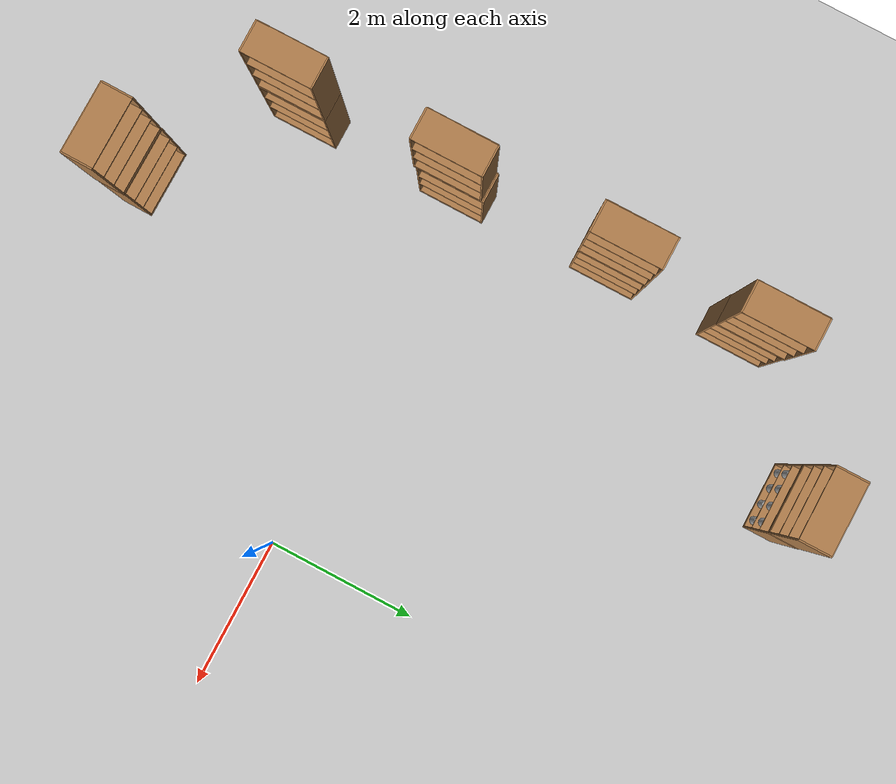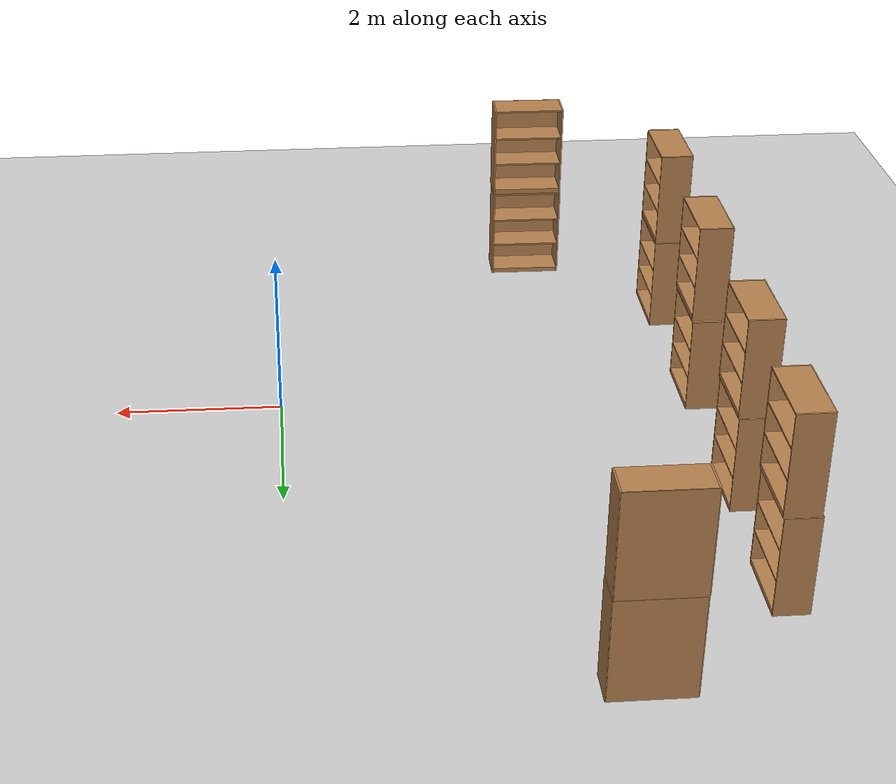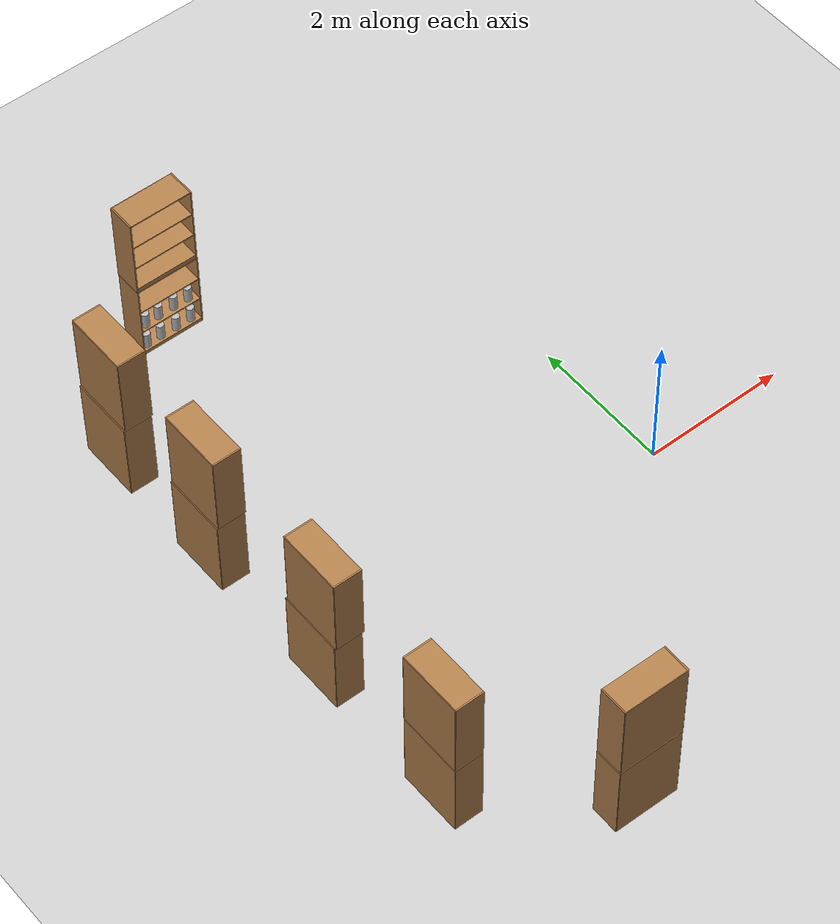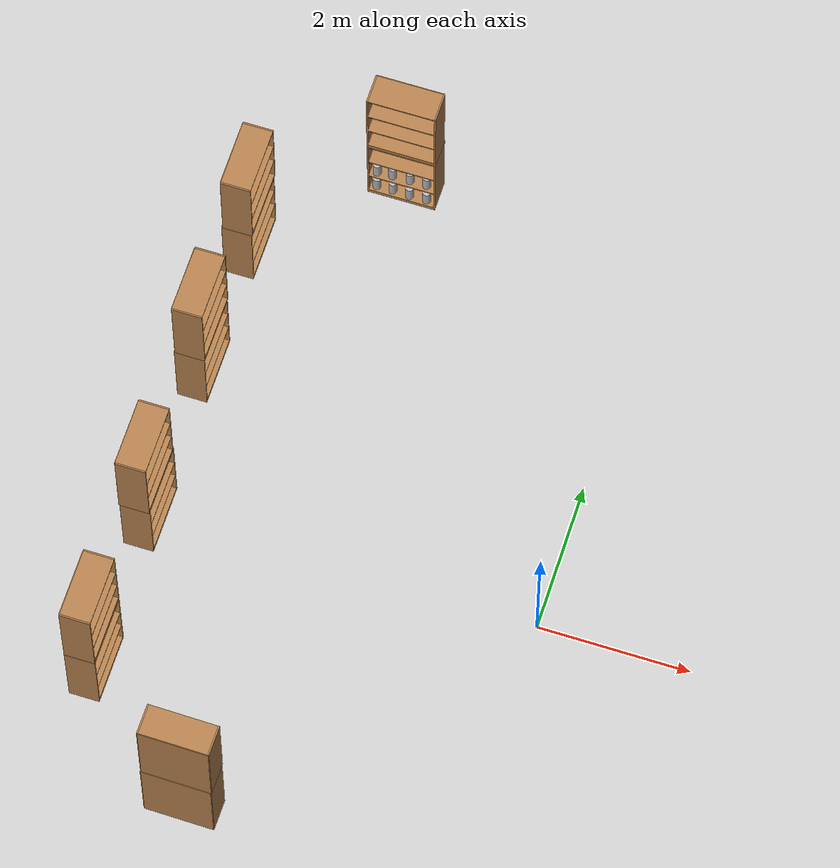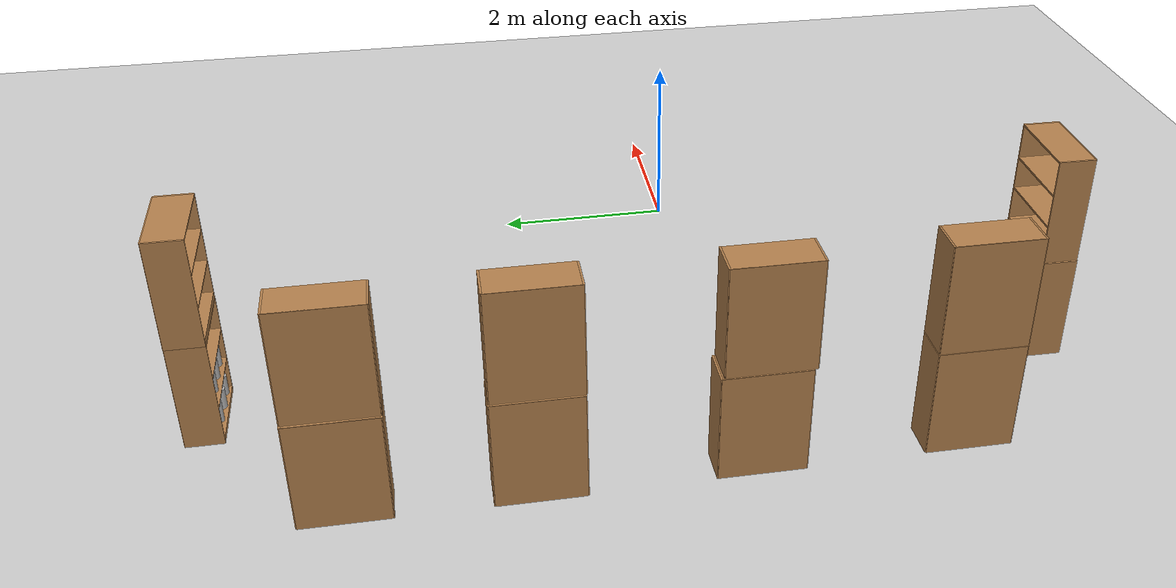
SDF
<sdf version="1.7">
 <world name="default">
  <model name="ground_plane">
   <static>1</static>
   <link name="link">
    <collision name="collision">
     <geometry><plane><normal>0 0 1</normal><size>100 100</size></plane></geometry>
     <surface><friction><ode><mu>100</mu><mu2>50</mu2></ode></friction></surface>
    </collision>
    <visual name="visual">
     <cast_shadows>0</cast_shadows>
     <geometry><plane><normal>0 0 1</normal><size>100 100</size></plane></geometry>
     <material>
      <script><uri>file://media/materials/scripts/gazebo.material</uri><name>Gazebo/Grey</name></script>
     </material>
    </visual>
   </link>
  </model>
  <model name="bookshelf_2_clone_clone">
   <static>1</static>
   <link name="link">
    <inertial><mass>1</mass></inertial>
    <collision name="back">
     <pose>0 0.005 0.6 0 -0 0</pose>
     <geometry><box><size>0.9 0.01 1.2</size></box></geometry>
    </collision>
    <visual name="visual1">
     <pose>0 0.005 0.6 0 -0 0</pose>
     <geometry><box><size>0.9 0.01 1.2</size></box></geometry>
     <material>
      <script><uri>file://media/materials/scripts/gazebo.material</uri><name>Gazebo/Wood</name></script>
     </material>
    </visual>
    <collision name="left_side">
     <pose>0.45 -0.195 0.6 0 -0 0</pose>
     <geometry><box><size>0.02 0.4 1.2</size></box></geometry>
    </collision>
    <visual name="visual2">
     <pose>0.45 -0.195 0.6 0 -0 0</pose>
     <geometry><box><size>0.02 0.4 1.2</size></box></geometry>
     <material>
      <script><uri>file://media/materials/scripts/gazebo.material</uri><name>Gazebo/Wood</name></script>
     </material>
    </visual>
    <collision name="right_side">
     <pose>-0.45 -0.195 0.6 0 -0 0</pose>
     <geometry><box><size>0.02 0.4 1.2</size></box></geometry>
    </collision>
    <visual name="visual3">
     <pose>-0.45 -0.195 0.6 0 -0 0</pose>
     <geometry><box><size>0.02 0.4 1.2</size></box></geometry>
     <material>
      <script><uri>file://media/materials/scripts/gazebo.material</uri><name>Gazebo/Wood</name></script>
     </material>
    </visual>
    <collision name="bottom">
     <pose>0 -0.195 0.03 0 -0 0</pose>
     <geometry><box><size>0.88 0.4 0.06</size></box></geometry>
    </collision>
    <visual name="visual4">
     <pose>0 -0.195 0.03 0 -0 0</pose>
     <geometry><box><size>0.88 0.4 0.06</size></box></geometry>
     <material>
      <script><uri>file://media/materials/scripts/gazebo.material</uri><name>Gazebo/Wood</name></script>
     </material>
    </visual>
    <collision name="top">
     <pose>0 -0.195 1.19 0 -0 0</pose>
     <geometry><box><size>0.88 0.4 0.02</size></box></geometry>
    </collision>
    <visual name="visual5">
     <pose>0 -0.195 1.19 0 -0 0</pose>
     <geometry><box><size>0.88 0.4 0.02</size></box></geometry>
     <material>
      <script><uri>file://media/materials/scripts/gazebo.material</uri><name>Gazebo/Wood</name></script>
     </material>
    </visual>
    <collision name="low_shelf">
     <pose>0 -0.195 0.43 0 -0 0</pose>
     <geometry><box><size>0.88 0.4 0.02</size></box></geometry>
    </collision>
    <visual name="visual6">
     <pose>0 -0.195 0.43 0 -0 0</pose>
     <geometry><box><size>0.88 0.4 0.02</size></box></geometry>
     <material>
      <script><uri>file://media/materials/scripts/gazebo.material</uri><name>Gazebo/Wood</name></script>
     </material>
    </visual>
    <collision name="high_shelf">
     <pose>0 -0.195 0.8 0 -0 0</pose>
     <geometry><box><size>0.88 0.4 0.02</size></box></geometry>
    </collision>
    <visual name="visual7">
     <pose>0 -0.195 0.8 0 -0 0</pose>
     <geometry><box><size>0.88 0.4 0.02</size></box></geometry>
     <material>
      <script><uri>file://media/materials/scripts/gazebo.material</uri><name>Gazebo/Wood</name></script>
     </material>
    </visual>
   </link>
   <pose>-3.46853 5.62428 0 0 -0 0</pose>
  </model>
  <model name="bookshelf_3_clone_clone">
   <static>1</static>
   <link name="link">
    <inertial><mass>1</mass></inertial>
    <collision name="back">
     <pose>0 0.005 0.6 0 -0 0</pose>
     <geometry><box><size>0.9 0.01 1.2</size></box></geometry>
    </collision>
    <visual name="visual1">
     <pose>0 0.005 0.6 0 -0 0</pose>
     <geometry><box><size>0.9 0.01 1.2</size></box></geometry>
     <material>
      <script><uri>file://media/materials/scripts/gazebo.material</uri><name>Gazebo/Wood</name></script>
     </material>
    </visual>
    <collision name="left_side">
     <pose>0.45 -0.195 0.6 0 -0 0</pose>
     <geometry><box><size>0.02 0.4 1.2</size></box></geometry>
    </collision>
    <visual name="visual2">
     <pose>0.45 -0.195 0.6 0 -0 0</pose>
     <geometry><box><size>0.02 0.4 1.2</size></box></geometry>
     <material>
      <script><uri>file://media/materials/scripts/gazebo.material</uri><name>Gazebo/Wood</name></script>
     </material>
    </visual>
    <collision name="right_side">
     <pose>-0.45 -0.195 0.6 0 -0 0</pose>
     <geometry><box><size>0.02 0.4 1.2</size></box></geometry>
    </collision>
    <visual name="visual3">
     <pose>-0.45 -0.195 0.6 0 -0 0</pose>
     <geometry><box><size>0.02 0.4 1.2</size></box></geometry>
     <material>
      <script><uri>file://media/materials/scripts/gazebo.material</uri><name>Gazebo/Wood</name></script>
     </material>
    </visual>
    <collision name="bottom">
     <pose>0 -0.195 0.03 0 -0 0</pose>
     <geometry><box><size>0.88 0.4 0.06</size></box></geometry>
    </collision>
    <visual name="visual4">
     <pose>0 -0.195 0.03 0 -0 0</pose>
     <geometry><box><size>0.88 0.4 0.06</size></box></geometry>
     <material>
      <script><uri>file://media/materials/scripts/gazebo.material</uri><name>Gazebo/Wood</name></script>
     </material>
    </visual>
    <collision name="top">
     <pose>0 -0.195 1.19 0 -0 0</pose>
     <geometry><box><size>0.88 0.4 0.02</size></box></geometry>
    </collision>
    <visual name="visual5">
     <pose>0 -0.195 1.19 0 -0 0</pose>
     <geometry><box><size>0.88 0.4 0.02</size></box></geometry>
     <material>
      <script><uri>file://media/materials/scripts/gazebo.material</uri><name>Gazebo/Wood</name></script>
     </material>
    </visual>
    <collision name="low_shelf">
     <pose>0 -0.195 0.43 0 -0 0</pose>
     <geometry><box><size>0.88 0.4 0.02</size></box></geometry>
    </collision>
    <visual name="visual6">
     <pose>0 -0.195 0.43 0 -0 0</pose>
     <geometry><box><size>0.88 0.4 0.02</size></box></geometry>
     <material>
      <script><uri>file://media/materials/scripts/gazebo.material</uri><name>Gazebo/Wood</name></script>
     </material>
    </visual>
    <collision name="high_shelf">
     <pose>0 -0.195 0.8 0 -0 0</pose>
     <geometry><box><size>0.88 0.4 0.02</size></box></geometry>
    </collision>
    <visual name="visual7">
     <pose>0 -0.195 0.8 0 -0 0</pose>
     <geometry><box><size>0.88 0.4 0.02</size></box></geometry>
     <material>
      <script><uri>file://media/materials/scripts/gazebo.material</uri><name>Gazebo/Wood</name></script>
     </material>
    </visual>
   </link>
   <pose>-3.47373 5.62521 1.20481 0 -0 0</pose>
  </model>
  <model name="bookshelf_5_clone_5">
   <static>1</static>
   <link name="link">
    <inertial><mass>1</mass></inertial>
    <collision name="back">
     <pose>0 0.005 0.6 0 -0 0</pose>
     <geometry><box><size>0.9 0.01 1.2</size></box></geometry>
    </collision>
    <visual name="visual1">
     <pose>0 0.005 0.6 0 -0 0</pose>
     <geometry><box><size>0.9 0.01 1.2</size></box></geometry>
     <material>
      <script><uri>file://media/materials/scripts/gazebo.material</uri><name>Gazebo/Wood</name></script>
     </material>
    </visual>
    <collision name="left_side">
     <pose>0.45 -0.195 0.6 0 -0 0</pose>
     <geometry><box><size>0.02 0.4 1.2</size></box></geometry>
    </collision>
    <visual name="visual2">
     <pose>0.45 -0.195 0.6 0 -0 0</pose>
     <geometry><box><size>0.02 0.4 1.2</size></box></geometry>
     <material>
      <script><uri>file://media/materials/scripts/gazebo.material</uri><name>Gazebo/Wood</name></script>
     </material>
    </visual>
    <collision name="right_side">
     <pose>-0.45 -0.195 0.6 0 -0 0</pose>
     <geometry><box><size>0.02 0.4 1.2</size></box></geometry>
    </collision>
    <visual name="visual3">
     <pose>-0.45 -0.195 0.6 0 -0 0</pose>
     <geometry><box><size>0.02 0.4 1.2</size></box></geometry>
     <material>
      <script><uri>file://media/materials/scripts/gazebo.material</uri><name>Gazebo/Wood</name></script>
     </material>
    </visual>
    <collision name="bottom">
     <pose>0 -0.195 0.03 0 -0 0</pose>
     <geometry><box><size>0.88 0.4 0.06</size></box></geometry>
    </collision>
    <visual name="visual4">
     <pose>0 -0.195 0.03 0 -0 0</pose>
     <geometry><box><size>0.88 0.4 0.06</size></box></geometry>
     <material>
      <script><uri>file://media/materials/scripts/gazebo.material</uri><name>Gazebo/Wood</name></script>
     </material>
    </visual>
    <collision name="top">
     <pose>0 -0.195 1.19 0 -0 0</pose>
     <geometry><box><size>0.88 0.4 0.02</size></box></geometry>
    </collision>
    <visual name="visual5">
     <pose>0 -0.195 1.19 0 -0 0</pose>
     <geometry><box><size>0.88 0.4 0.02</size></box></geometry>
     <material>
      <script><uri>file://media/materials/scripts/gazebo.material</uri><name>Gazebo/Wood</name></script>
     </material>
    </visual>
    <collision name="low_shelf">
     <pose>0 -0.195 0.43 0 -0 0</pose>
     <geometry><box><size>0.88 0.4 0.02</size></box></geometry>
    </collision>
    <visual name="visual6">
     <pose>0 -0.195 0.43 0 -0 0</pose>
     <geometry><box><size>0.88 0.4 0.02</size></box></geometry>
     <material>
      <script><uri>file://media/materials/scripts/gazebo.material</uri><name>Gazebo/Wood</name></script>
     </material>
    </visual>
    <collision name="high_shelf">
     <pose>0 -0.195 0.8 0 -0 0</pose>
     <geometry><box><size>0.88 0.4 0.02</size></box></geometry>
    </collision>
    <visual name="visual7">
     <pose>0 -0.195 0.8 0 -0 0</pose>
     <geometry><box><size>0.88 0.4 0.02</size></box></geometry>
     <material>
      <script><uri>file://media/materials/scripts/gazebo.material</uri><name>Gazebo/Wood</name></script>
     </material>
    </visual>
   </link>
   <pose>-3.44979 -3.80253 0 0 -0 3.12955</pose>
  </model>
  <model name="bookshelf_5_clone_clone_1">
   <static>1</static>
   <link name="link">
    <inertial><mass>1</mass></inertial>
    <collision name="back">
     <pose>0 0.005 0.6 0 -0 0</pose>
     <geometry><box><size>0.9 0.01 1.2</size></box></geometry>
    </collision>
    <visual name="visual1">
     <pose>0 0.005 0.6 0 -0 0</pose>
     <geometry><box><size>0.9 0.01 1.2</size></box></geometry>
     <material>
      <script><uri>file://media/materials/scripts/gazebo.material</uri><name>Gazebo/Wood</name></script>
     </material>
    </visual>
    <collision name="left_side">
     <pose>0.45 -0.195 0.6 0 -0 0</pose>
     <geometry><box><size>0.02 0.4 1.2</size></box></geometry>
    </collision>
    <visual name="visual2">
     <pose>0.45 -0.195 0.6 0 -0 0</pose>
     <geometry><box><size>0.02 0.4 1.2</size></box></geometry>
     <material>
      <script><uri>file://media/materials/scripts/gazebo.material</uri><name>Gazebo/Wood</name></script>
     </material>
    </visual>
    <collision name="right_side">
     <pose>-0.45 -0.195 0.6 0 -0 0</pose>
     <geometry><box><size>0.02 0.4 1.2</size></box></geometry>
    </collision>
    <visual name="visual3">
     <pose>-0.45 -0.195 0.6 0 -0 0</pose>
     <geometry><box><size>0.02 0.4 1.2</size></box></geometry>
     <material>
      <script><uri>file://media/materials/scripts/gazebo.material</uri><name>Gazebo/Wood</name></script>
     </material>
    </visual>
    <collision name="bottom">
     <pose>0 -0.195 0.03 0 -0 0</pose>
     <geometry><box><size>0.88 0.4 0.06</size></box></geometry>
    </collision>
    <visual name="visual4">
     <pose>0 -0.195 0.03 0 -0 0</pose>
     <geometry><box><size>0.88 0.4 0.06</size></box></geometry>
     <material>
      <script><uri>file://media/materials/scripts/gazebo.material</uri><name>Gazebo/Wood</name></script>
     </material>
    </visual>
    <collision name="top">
     <pose>0 -0.195 1.19 0 -0 0</pose>
     <geometry><box><size>0.88 0.4 0.02</size></box></geometry>
    </collision>
    <visual name="visual5">
     <pose>0 -0.195 1.19 0 -0 0</pose>
     <geometry><box><size>0.88 0.4 0.02</size></box></geometry>
     <material>
      <script><uri>file://media/materials/scripts/gazebo.material</uri><name>Gazebo/Wood</name></script>
     </material>
    </visual>
    <collision name="low_shelf">
     <pose>0 -0.195 0.43 0 -0 0</pose>
     <geometry><box><size>0.88 0.4 0.02</size></box></geometry>
    </collision>
    <visual name="visual6">
     <pose>0 -0.195 0.43 0 -0 0</pose>
     <geometry><box><size>0.88 0.4 0.02</size></box></geometry>
     <material>
      <script><uri>file://media/materials/scripts/gazebo.material</uri><name>Gazebo/Wood</name></script>
     </material>
    </visual>
    <collision name="high_shelf">
     <pose>0 -0.195 0.8 0 -0 0</pose>
     <geometry><box><size>0.88 0.4 0.02</size></box></geometry>
    </collision>
    <visual name="visual7">
     <pose>0 -0.195 0.8 0 -0 0</pose>
     <geometry><box><size>0.88 0.4 0.02</size></box></geometry>
     <material>
      <script><uri>file://media/materials/scripts/gazebo.material</uri><name>Gazebo/Wood</name></script>
     </material>
    </visual>
   </link>
   <pose>-3.44383 -3.79926 1.21139 0 -0 3.12955</pose>
  </model>
  <model name="bookshelf_0_clone_0">
   <static>1</static>
   <link name="link">
    <inertial><mass>1</mass></inertial>
    <collision name="back">
     <pose>0 0.005 0.6 0 -0 0</pose>
     <geometry><box><size>0.9 0.01 1.2</size></box></geometry>
    </collision>
    <visual name="visual1">
     <pose>0 0.005 0.6 0 -0 0</pose>
     <geometry><box><size>0.9 0.01 1.2</size></box></geometry>
     <material>
      <script><uri>file://media/materials/scripts/gazebo.material</uri><name>Gazebo/Wood</name></script>
     </material>
    </visual>
    <collision name="left_side">
     <pose>0.45 -0.195 0.6 0 -0 0</pose>
     <geometry><box><size>0.02 0.4 1.2</size></box></geometry>
    </collision>
    <visual name="visual2">
     <pose>0.45 -0.195 0.6 0 -0 0</pose>
     <geometry><box><size>0.02 0.4 1.2</size></box></geometry>
     <material>
      <script><uri>file://media/materials/scripts/gazebo.material</uri><name>Gazebo/Wood</name></script>
     </material>
    </visual>
    <collision name="right_side">
     <pose>-0.45 -0.195 0.6 0 -0 0</pose>
     <geometry><box><size>0.02 0.4 1.2</size></box></geometry>
    </collision>
    <visual name="visual3">
     <pose>-0.45 -0.195 0.6 0 -0 0</pose>
     <geometry><box><size>0.02 0.4 1.2</size></box></geometry>
     <material>
      <script><uri>file://media/materials/scripts/gazebo.material</uri><name>Gazebo/Wood</name></script>
     </material>
    </visual>
    <collision name="bottom">
     <pose>0 -0.195 0.03 0 -0 0</pose>
     <geometry><box><size>0.88 0.4 0.06</size></box></geometry>
    </collision>
    <visual name="visual4">
     <pose>0 -0.195 0.03 0 -0 0</pose>
     <geometry><box><size>0.88 0.4 0.06</size></box></geometry>
     <material>
      <script><uri>file://media/materials/scripts/gazebo.material</uri><name>Gazebo/Wood</name></script>
     </material>
    </visual>
    <collision name="top">
     <pose>0 -0.195 1.19 0 -0 0</pose>
     <geometry><box><size>0.88 0.4 0.02</size></box></geometry>
    </collision>
    <visual name="visual5">
     <pose>0 -0.195 1.19 0 -0 0</pose>
     <geometry><box><size>0.88 0.4 0.02</size></box></geometry>
     <material>
      <script><uri>file://media/materials/scripts/gazebo.material</uri><name>Gazebo/Wood</name></script>
     </material>
    </visual>
    <collision name="low_shelf">
     <pose>0 -0.195 0.43 0 -0 0</pose>
     <geometry><box><size>0.88 0.4 0.02</size></box></geometry>
    </collision>
    <visual name="visual6">
     <pose>0 -0.195 0.43 0 -0 0</pose>
     <geometry><box><size>0.88 0.4 0.02</size></box></geometry>
     <material>
      <script><uri>file://media/materials/scripts/gazebo.material</uri><name>Gazebo/Wood</name></script>
     </material>
    </visual>
    <collision name="high_shelf">
     <pose>0 -0.195 0.8 0 -0 0</pose>
     <geometry><box><size>0.88 0.4 0.02</size></box></geometry>
    </collision>
    <visual name="visual7">
     <pose>0 -0.195 0.8 0 -0 0</pose>
     <geometry><box><size>0.88 0.4 0.02</size></box></geometry>
     <material>
      <script><uri>file://media/materials/scripts/gazebo.material</uri><name>Gazebo/Wood</name></script>
     </material>
    </visual>
   </link>
   <pose>-5.30935 -0.025093 0 0 -0 1.5697</pose>
  </model>
  <model name="bookshelf_0_clone_0_clone">
   <static>1</static>
   <link name="link">
    <inertial><mass>1</mass></inertial>
    <collision name="back">
     <pose>0 0.005 0.6 0 -0 0</pose>
     <geometry><box><size>0.9 0.01 1.2</size></box></geometry>
    </collision>
    <visual name="visual1">
     <pose>0 0.005 0.6 0 -0 0</pose>
     <geometry><box><size>0.9 0.01 1.2</size></box></geometry>
     <material>
      <script><uri>file://media/materials/scripts/gazebo.material</uri><name>Gazebo/Wood</name></script>
     </material>
    </visual>
    <collision name="left_side">
     <pose>0.45 -0.195 0.6 0 -0 0</pose>
     <geometry><box><size>0.02 0.4 1.2</size></box></geometry>
    </collision>
    <visual name="visual2">
     <pose>0.45 -0.195 0.6 0 -0 0</pose>
     <geometry><box><size>0.02 0.4 1.2</size></box></geometry>
     <material>
      <script><uri>file://media/materials/scripts/gazebo.material</uri><name>Gazebo/Wood</name></script>
     </material>
    </visual>
    <collision name="right_side">
     <pose>-0.45 -0.195 0.6 0 -0 0</pose>
     <geometry><box><size>0.02 0.4 1.2</size></box></geometry>
    </collision>
    <visual name="visual3">
     <pose>-0.45 -0.195 0.6 0 -0 0</pose>
     <geometry><box><size>0.02 0.4 1.2</size></box></geometry>
     <material>
      <script><uri>file://media/materials/scripts/gazebo.material</uri><name>Gazebo/Wood</name></script>
     </material>
    </visual>
    <collision name="bottom">
     <pose>0 -0.195 0.03 0 -0 0</pose>
     <geometry><box><size>0.88 0.4 0.06</size></box></geometry>
    </collision>
    <visual name="visual4">
     <pose>0 -0.195 0.03 0 -0 0</pose>
     <geometry><box><size>0.88 0.4 0.06</size></box></geometry>
     <material>
      <script><uri>file://media/materials/scripts/gazebo.material</uri><name>Gazebo/Wood</name></script>
     </material>
    </visual>
    <collision name="top">
     <pose>0 -0.195 1.19 0 -0 0</pose>
     <geometry><box><size>0.88 0.4 0.02</size></box></geometry>
    </collision>
    <visual name="visual5">
     <pose>0 -0.195 1.19 0 -0 0</pose>
     <geometry><box><size>0.88 0.4 0.02</size></box></geometry>
     <material>
      <script><uri>file://media/materials/scripts/gazebo.material</uri><name>Gazebo/Wood</name></script>
     </material>
    </visual>
    <collision name="low_shelf">
     <pose>0 -0.195 0.43 0 -0 0</pose>
     <geometry><box><size>0.88 0.4 0.02</size></box></geometry>
    </collision>
    <visual name="visual6">
     <pose>0 -0.195 0.43 0 -0 0</pose>
     <geometry><box><size>0.88 0.4 0.02</size></box></geometry>
     <material>
      <script><uri>file://media/materials/scripts/gazebo.material</uri><name>Gazebo/Wood</name></script>
     </material>
    </visual>
    <collision name="high_shelf">
     <pose>0 -0.195 0.8 0 -0 0</pose>
     <geometry><box><size>0.88 0.4 0.02</size></box></geometry>
    </collision>
    <visual name="visual7">
     <pose>0 -0.195 0.8 0 -0 0</pose>
     <geometry><box><size>0.88 0.4 0.02</size></box></geometry>
     <material>
      <script><uri>file://media/materials/scripts/gazebo.material</uri><name>Gazebo/Wood</name></script>
     </material>
    </visual>
   </link>
   <pose>-5.33454 2.15943 0 0 -0 1.5697</pose>
  </model>
  <model name="bookshelf_0_clone_0_clone_0">
   <static>1</static>
   <link name="link">
    <inertial><mass>1</mass></inertial>
    <collision name="back">
     <pose>0 0.005 0.6 0 -0 0</pose>
     <geometry><box><size>0.9 0.01 1.2</size></box></geometry>
    </collision>
    <visual name="visual1">
     <pose>0 0.005 0.6 0 -0 0</pose>
     <geometry><box><size>0.9 0.01 1.2</size></box></geometry>
     <material>
      <script><uri>file://media/materials/scripts/gazebo.material</uri><name>Gazebo/Wood</name></script>
     </material>
    </visual>
    <collision name="left_side">
     <pose>0.45 -0.195 0.6 0 -0 0</pose>
     <geometry><box><size>0.02 0.4 1.2</size></box></geometry>
    </collision>
    <visual name="visual2">
     <pose>0.45 -0.195 0.6 0 -0 0</pose>
     <geometry><box><size>0.02 0.4 1.2</size></box></geometry>
     <material>
      <script><uri>file://media/materials/scripts/gazebo.material</uri><name>Gazebo/Wood</name></script>
     </material>
    </visual>
    <collision name="right_side">
     <pose>-0.45 -0.195 0.6 0 -0 0</pose>
     <geometry><box><size>0.02 0.4 1.2</size></box></geometry>
    </collision>
    <visual name="visual3">
     <pose>-0.45 -0.195 0.6 0 -0 0</pose>
     <geometry><box><size>0.02 0.4 1.2</size></box></geometry>
     <material>
      <script><uri>file://media/materials/scripts/gazebo.material</uri><name>Gazebo/Wood</name></script>
     </material>
    </visual>
    <collision name="bottom">
     <pose>0 -0.195 0.03 0 -0 0</pose>
     <geometry><box><size>0.88 0.4 0.06</size></box></geometry>
    </collision>
    <visual name="visual4">
     <pose>0 -0.195 0.03 0 -0 0</pose>
     <geometry><box><size>0.88 0.4 0.06</size></box></geometry>
     <material>
      <script><uri>file://media/materials/scripts/gazebo.material</uri><name>Gazebo/Wood</name></script>
     </material>
    </visual>
    <collision name="top">
     <pose>0 -0.195 1.19 0 -0 0</pose>
     <geometry><box><size>0.88 0.4 0.02</size></box></geometry>
    </collision>
    <visual name="visual5">
     <pose>0 -0.195 1.19 0 -0 0</pose>
     <geometry><box><size>0.88 0.4 0.02</size></box></geometry>
     <material>
      <script><uri>file://media/materials/scripts/gazebo.material</uri><name>Gazebo/Wood</name></script>
     </material>
    </visual>
    <collision name="low_shelf">
     <pose>0 -0.195 0.43 0 -0 0</pose>
     <geometry><box><size>0.88 0.4 0.02</size></box></geometry>
    </collision>
    <visual name="visual6">
     <pose>0 -0.195 0.43 0 -0 0</pose>
     <geometry><box><size>0.88 0.4 0.02</size></box></geometry>
     <material>
      <script><uri>file://media/materials/scripts/gazebo.material</uri><name>Gazebo/Wood</name></script>
     </material>
    </visual>
    <collision name="high_shelf">
     <pose>0 -0.195 0.8 0 -0 0</pose>
     <geometry><box><size>0.88 0.4 0.02</size></box></geometry>
    </collision>
    <visual name="visual7">
     <pose>0 -0.195 0.8 0 -0 0</pose>
     <geometry><box><size>0.88 0.4 0.02</size></box></geometry>
     <material>
      <script><uri>file://media/materials/scripts/gazebo.material</uri><name>Gazebo/Wood</name></script>
     </material>
    </visual>
   </link>
   <pose>-5.32765 4.01778 0 0 -0 1.5697</pose>
  </model>
  <model name="bookshelf_0_clone_0_clone_1_clone_0">
   <static>1</static>
   <link name="link">
    <inertial><mass>1</mass></inertial>
    <collision name="back">
     <pose>0 0.005 0.6 0 -0 0</pose>
     <geometry><box><size>0.9 0.01 1.2</size></box></geometry>
    </collision>
    <visual name="visual1">
     <pose>0 0.005 0.6 0 -0 0</pose>
     <geometry><box><size>0.9 0.01 1.2</size></box></geometry>
     <material>
      <script><uri>file://media/materials/scripts/gazebo.material</uri><name>Gazebo/Wood</name></script>
     </material>
    </visual>
    <collision name="left_side">
     <pose>0.45 -0.195 0.6 0 -0 0</pose>
     <geometry><box><size>0.02 0.4 1.2</size></box></geometry>
    </collision>
    <visual name="visual2">
     <pose>0.45 -0.195 0.6 0 -0 0</pose>
     <geometry><box><size>0.02 0.4 1.2</size></box></geometry>
     <material>
      <script><uri>file://media/materials/scripts/gazebo.material</uri><name>Gazebo/Wood</name></script>
     </material>
    </visual>
    <collision name="right_side">
     <pose>-0.45 -0.195 0.6 0 -0 0</pose>
     <geometry><box><size>0.02 0.4 1.2</size></box></geometry>
    </collision>
    <visual name="visual3">
     <pose>-0.45 -0.195 0.6 0 -0 0</pose>
     <geometry><box><size>0.02 0.4 1.2</size></box></geometry>
     <material>
      <script><uri>file://media/materials/scripts/gazebo.material</uri><name>Gazebo/Wood</name></script>
     </material>
    </visual>
    <collision name="bottom">
     <pose>0 -0.195 0.03 0 -0 0</pose>
     <geometry><box><size>0.88 0.4 0.06</size></box></geometry>
    </collision>
    <visual name="visual4">
     <pose>0 -0.195 0.03 0 -0 0</pose>
     <geometry><box><size>0.88 0.4 0.06</size></box></geometry>
     <material>
      <script><uri>file://media/materials/scripts/gazebo.material</uri><name>Gazebo/Wood</name></script>
     </material>
    </visual>
    <collision name="top">
     <pose>0 -0.195 1.19 0 -0 0</pose>
     <geometry><box><size>0.88 0.4 0.02</size></box></geometry>
    </collision>
    <visual name="visual5">
     <pose>0 -0.195 1.19 0 -0 0</pose>
     <geometry><box><size>0.88 0.4 0.02</size></box></geometry>
     <material>
      <script><uri>file://media/materials/scripts/gazebo.material</uri><name>Gazebo/Wood</name></script>
     </material>
    </visual>
    <collision name="low_shelf">
     <pose>0 -0.195 0.43 0 -0 0</pose>
     <geometry><box><size>0.88 0.4 0.02</size></box></geometry>
    </collision>
    <visual name="visual6">
     <pose>0 -0.195 0.43 0 -0 0</pose>
     <geometry><box><size>0.88 0.4 0.02</size></box></geometry>
     <material>
      <script><uri>file://media/materials/scripts/gazebo.material</uri><name>Gazebo/Wood</name></script>
     </material>
    </visual>
    <collision name="high_shelf">
     <pose>0 -0.195 0.8 0 -0 0</pose>
     <geometry><box><size>0.88 0.4 0.02</size></box></geometry>
    </collision>
    <visual name="visual7">
     <pose>0 -0.195 0.8 0 -0 0</pose>
     <geometry><box><size>0.88 0.4 0.02</size></box></geometry>
     <material>
      <script><uri>file://media/materials/scripts/gazebo.material</uri><name>Gazebo/Wood</name></script>
     </material>
    </visual>
   </link>
   <pose>-5.32334 2.15341 1.21067 0 -0 1.5697</pose>
  </model>
  <model name="bookshelf_0_clone_0_clone_1_clone_1">
   <static>1</static>
   <link name="link">
    <inertial><mass>1</mass></inertial>
    <collision name="back">
     <pose>0 0.005 0.6 0 -0 0</pose>
     <geometry><box><size>0.9 0.01 1.2</size></box></geometry>
    </collision>
    <visual name="visual1">
     <pose>0 0.005 0.6 0 -0 0</pose>
     <geometry><box><size>0.9 0.01 1.2</size></box></geometry>
     <material>
      <script><uri>file://media/materials/scripts/gazebo.material</uri><name>Gazebo/Wood</name></script>
     </material>
    </visual>
    <collision name="left_side">
     <pose>0.45 -0.195 0.6 0 -0 0</pose>
     <geometry><box><size>0.02 0.4 1.2</size></box></geometry>
    </collision>
    <visual name="visual2">
     <pose>0.45 -0.195 0.6 0 -0 0</pose>
     <geometry><box><size>0.02 0.4 1.2</size></box></geometry>
     <material>
      <script><uri>file://media/materials/scripts/gazebo.material</uri><name>Gazebo/Wood</name></script>
     </material>
    </visual>
    <collision name="right_side">
     <pose>-0.45 -0.195 0.6 0 -0 0</pose>
     <geometry><box><size>0.02 0.4 1.2</size></box></geometry>
    </collision>
    <visual name="visual3">
     <pose>-0.45 -0.195 0.6 0 -0 0</pose>
     <geometry><box><size>0.02 0.4 1.2</size></box></geometry>
     <material>
      <script><uri>file://media/materials/scripts/gazebo.material</uri><name>Gazebo/Wood</name></script>
     </material>
    </visual>
    <collision name="bottom">
     <pose>0 -0.195 0.03 0 -0 0</pose>
     <geometry><box><size>0.88 0.4 0.06</size></box></geometry>
    </collision>
    <visual name="visual4">
     <pose>0 -0.195 0.03 0 -0 0</pose>
     <geometry><box><size>0.88 0.4 0.06</size></box></geometry>
     <material>
      <script><uri>file://media/materials/scripts/gazebo.material</uri><name>Gazebo/Wood</name></script>
     </material>
    </visual>
    <collision name="top">
     <pose>0 -0.195 1.19 0 -0 0</pose>
     <geometry><box><size>0.88 0.4 0.02</size></box></geometry>
    </collision>
    <visual name="visual5">
     <pose>0 -0.195 1.19 0 -0 0</pose>
     <geometry><box><size>0.88 0.4 0.02</size></box></geometry>
     <material>
      <script><uri>file://media/materials/scripts/gazebo.material</uri><name>Gazebo/Wood</name></script>
     </material>
    </visual>
    <collision name="low_shelf">
     <pose>0 -0.195 0.43 0 -0 0</pose>
     <geometry><box><size>0.88 0.4 0.02</size></box></geometry>
    </collision>
    <visual name="visual6">
     <pose>0 -0.195 0.43 0 -0 0</pose>
     <geometry><box><size>0.88 0.4 0.02</size></box></geometry>
     <material>
      <script><uri>file://media/materials/scripts/gazebo.material</uri><name>Gazebo/Wood</name></script>
     </material>
    </visual>
    <collision name="high_shelf">
     <pose>0 -0.195 0.8 0 -0 0</pose>
     <geometry><box><size>0.88 0.4 0.02</size></box></geometry>
    </collision>
    <visual name="visual7">
     <pose>0 -0.195 0.8 0 -0 0</pose>
     <geometry><box><size>0.88 0.4 0.02</size></box></geometry>
     <material>
      <script><uri>file://media/materials/scripts/gazebo.material</uri><name>Gazebo/Wood</name></script>
     </material>
    </visual>
   </link>
   <pose>-5.31196 4.0164 1.21067 0 -0 1.5697</pose>
  </model>
  <model name="bookshelf_0_clone_0_clone_1">
   <static>1</static>
   <link name="link">
    <inertial><mass>1</mass></inertial>
    <collision name="back">
     <pose>0 0.005 0.6 0 -0 0</pose>
     <geometry><box><size>0.9 0.01 1.2</size></box></geometry>
    </collision>
    <visual name="visual1">
     <pose>0 0.005 0.6 0 -0 0</pose>
     <geometry><box><size>0.9 0.01 1.2</size></box></geometry>
     <material>
      <script><uri>file://media/materials/scripts/gazebo.material</uri><name>Gazebo/Wood</name></script>
     </material>
    </visual>
    <collision name="left_side">
     <pose>0.45 -0.195 0.6 0 -0 0</pose>
     <geometry><box><size>0.02 0.4 1.2</size></box></geometry>
    </collision>
    <visual name="visual2">
     <pose>0.45 -0.195 0.6 0 -0 0</pose>
     <geometry><box><size>0.02 0.4 1.2</size></box></geometry>
     <material>
      <script><uri>file://media/materials/scripts/gazebo.material</uri><name>Gazebo/Wood</name></script>
     </material>
    </visual>
    <collision name="right_side">
     <pose>-0.45 -0.195 0.6 0 -0 0</pose>
     <geometry><box><size>0.02 0.4 1.2</size></box></geometry>
    </collision>
    <visual name="visual3">
     <pose>-0.45 -0.195 0.6 0 -0 0</pose>
     <geometry><box><size>0.02 0.4 1.2</size></box></geometry>
     <material>
      <script><uri>file://media/materials/scripts/gazebo.material</uri><name>Gazebo/Wood</name></script>
     </material>
    </visual>
    <collision name="bottom">
     <pose>0 -0.195 0.03 0 -0 0</pose>
     <geometry><box><size>0.88 0.4 0.06</size></box></geometry>
    </collision>
    <visual name="visual4">
     <pose>0 -0.195 0.03 0 -0 0</pose>
     <geometry><box><size>0.88 0.4 0.06</size></box></geometry>
     <material>
      <script><uri>file://media/materials/scripts/gazebo.material</uri><name>Gazebo/Wood</name></script>
     </material>
    </visual>
    <collision name="top">
     <pose>0 -0.195 1.19 0 -0 0</pose>
     <geometry><box><size>0.88 0.4 0.02</size></box></geometry>
    </collision>
    <visual name="visual5">
     <pose>0 -0.195 1.19 0 -0 0</pose>
     <geometry><box><size>0.88 0.4 0.02</size></box></geometry>
     <material>
      <script><uri>file://media/materials/scripts/gazebo.material</uri><name>Gazebo/Wood</name></script>
     </material>
    </visual>
    <collision name="low_shelf">
     <pose>0 -0.195 0.43 0 -0 0</pose>
     <geometry><box><size>0.88 0.4 0.02</size></box></geometry>
    </collision>
    <visual name="visual6">
     <pose>0 -0.195 0.43 0 -0 0</pose>
     <geometry><box><size>0.88 0.4 0.02</size></box></geometry>
     <material>
      <script><uri>file://media/materials/scripts/gazebo.material</uri><name>Gazebo/Wood</name></script>
     </material>
    </visual>
    <collision name="high_shelf">
     <pose>0 -0.195 0.8 0 -0 0</pose>
     <geometry><box><size>0.88 0.4 0.02</size></box></geometry>
    </collision>
    <visual name="visual7">
     <pose>0 -0.195 0.8 0 -0 0</pose>
     <geometry><box><size>0.88 0.4 0.02</size></box></geometry>
     <material>
      <script><uri>file://media/materials/scripts/gazebo.material</uri><name>Gazebo/Wood</name></script>
     </material>
    </visual>
   </link>
   <pose>-5.28921 -2.17241 0 0 -0 1.5697</pose>
  </model>
  <model name="bookshelf_0_clone_0_clone_1_clone_0_clone">
   <static>1</static>
   <link name="link">
    <inertial><mass>1</mass></inertial>
    <collision name="back">
     <pose>0 0.005 0.6 0 -0 0</pose>
     <geometry><box><size>0.9 0.01 1.2</size></box></geometry>
    </collision>
    <visual name="visual1">
     <pose>0 0.005 0.6 0 -0 0</pose>
     <geometry><box><size>0.9 0.01 1.2</size></box></geometry>
     <material>
      <script><uri>file://media/materials/scripts/gazebo.material</uri><name>Gazebo/Wood</name></script>
     </material>
    </visual>
    <collision name="left_side">
     <pose>0.45 -0.195 0.6 0 -0 0</pose>
     <geometry><box><size>0.02 0.4 1.2</size></box></geometry>
    </collision>
    <visual name="visual2">
     <pose>0.45 -0.195 0.6 0 -0 0</pose>
     <geometry><box><size>0.02 0.4 1.2</size></box></geometry>
     <material>
      <script><uri>file://media/materials/scripts/gazebo.material</uri><name>Gazebo/Wood</name></script>
     </material>
    </visual>
    <collision name="right_side">
     <pose>-0.45 -0.195 0.6 0 -0 0</pose>
     <geometry><box><size>0.02 0.4 1.2</size></box></geometry>
    </collision>
    <visual name="visual3">
     <pose>-0.45 -0.195 0.6 0 -0 0</pose>
     <geometry><box><size>0.02 0.4 1.2</size></box></geometry>
     <material>
      <script><uri>file://media/materials/scripts/gazebo.material</uri><name>Gazebo/Wood</name></script>
     </material>
    </visual>
    <collision name="bottom">
     <pose>0 -0.195 0.03 0 -0 0</pose>
     <geometry><box><size>0.88 0.4 0.06</size></box></geometry>
    </collision>
    <visual name="visual4">
     <pose>0 -0.195 0.03 0 -0 0</pose>
     <geometry><box><size>0.88 0.4 0.06</size></box></geometry>
     <material>
      <script><uri>file://media/materials/scripts/gazebo.material</uri><name>Gazebo/Wood</name></script>
     </material>
    </visual>
    <collision name="top">
     <pose>0 -0.195 1.19 0 -0 0</pose>
     <geometry><box><size>0.88 0.4 0.02</size></box></geometry>
    </collision>
    <visual name="visual5">
     <pose>0 -0.195 1.19 0 -0 0</pose>
     <geometry><box><size>0.88 0.4 0.02</size></box></geometry>
     <material>
      <script><uri>file://media/materials/scripts/gazebo.material</uri><name>Gazebo/Wood</name></script>
     </material>
    </visual>
    <collision name="low_shelf">
     <pose>0 -0.195 0.43 0 -0 0</pose>
     <geometry><box><size>0.88 0.4 0.02</size></box></geometry>
    </collision>
    <visual name="visual6">
     <pose>0 -0.195 0.43 0 -0 0</pose>
     <geometry><box><size>0.88 0.4 0.02</size></box></geometry>
     <material>
      <script><uri>file://media/materials/scripts/gazebo.material</uri><name>Gazebo/Wood</name></script>
     </material>
    </visual>
    <collision name="high_shelf">
     <pose>0 -0.195 0.8 0 -0 0</pose>
     <geometry><box><size>0.88 0.4 0.02</size></box></geometry>
    </collision>
    <visual name="visual7">
     <pose>0 -0.195 0.8 0 -0 0</pose>
     <geometry><box><size>0.88 0.4 0.02</size></box></geometry>
     <material>
      <script><uri>file://media/materials/scripts/gazebo.material</uri><name>Gazebo/Wood</name></script>
     </material>
    </visual>
   </link>
   <pose>-5.30537 -0.057137 1.21067 0 -0 1.5697</pose>
  </model>
  <model name="bookshelf_0_clone_0_clone_1_clone_0_clone_0">
   <static>1</static>
   <link name="link">
    <inertial><mass>1</mass></inertial>
    <collision name="back">
     <pose>0 0.005 0.6 0 -0 0</pose>
     <geometry><box><size>0.9 0.01 1.2</size></box></geometry>
    </collision>
    <visual name="visual1">
     <pose>0 0.005 0.6 0 -0 0</pose>
     <geometry><box><size>0.9 0.01 1.2</size></box></geometry>
     <material>
      <script><uri>file://media/materials/scripts/gazebo.material</uri><name>Gazebo/Wood</name></script>
     </material>
    </visual>
    <collision name="left_side">
     <pose>0.45 -0.195 0.6 0 -0 0</pose>
     <geometry><box><size>0.02 0.4 1.2</size></box></geometry>
    </collision>
    <visual name="visual2">
     <pose>0.45 -0.195 0.6 0 -0 0</pose>
     <geometry><box><size>0.02 0.4 1.2</size></box></geometry>
     <material>
      <script><uri>file://media/materials/scripts/gazebo.material</uri><name>Gazebo/Wood</name></script>
     </material>
    </visual>
    <collision name="right_side">
     <pose>-0.45 -0.195 0.6 0 -0 0</pose>
     <geometry><box><size>0.02 0.4 1.2</size></box></geometry>
    </collision>
    <visual name="visual3">
     <pose>-0.45 -0.195 0.6 0 -0 0</pose>
     <geometry><box><size>0.02 0.4 1.2</size></box></geometry>
     <material>
      <script><uri>file://media/materials/scripts/gazebo.material</uri><name>Gazebo/Wood</name></script>
     </material>
    </visual>
    <collision name="bottom">
     <pose>0 -0.195 0.03 0 -0 0</pose>
     <geometry><box><size>0.88 0.4 0.06</size></box></geometry>
    </collision>
    <visual name="visual4">
     <pose>0 -0.195 0.03 0 -0 0</pose>
     <geometry><box><size>0.88 0.4 0.06</size></box></geometry>
     <material>
      <script><uri>file://media/materials/scripts/gazebo.material</uri><name>Gazebo/Wood</name></script>
     </material>
    </visual>
    <collision name="top">
     <pose>0 -0.195 1.19 0 -0 0</pose>
     <geometry><box><size>0.88 0.4 0.02</size></box></geometry>
    </collision>
    <visual name="visual5">
     <pose>0 -0.195 1.19 0 -0 0</pose>
     <geometry><box><size>0.88 0.4 0.02</size></box></geometry>
     <material>
      <script><uri>file://media/materials/scripts/gazebo.material</uri><name>Gazebo/Wood</name></script>
     </material>
    </visual>
    <collision name="low_shelf">
     <pose>0 -0.195 0.43 0 -0 0</pose>
     <geometry><box><size>0.88 0.4 0.02</size></box></geometry>
    </collision>
    <visual name="visual6">
     <pose>0 -0.195 0.43 0 -0 0</pose>
     <geometry><box><size>0.88 0.4 0.02</size></box></geometry>
     <material>
      <script><uri>file://media/materials/scripts/gazebo.material</uri><name>Gazebo/Wood</name></script>
     </material>
    </visual>
    <collision name="high_shelf">
     <pose>0 -0.195 0.8 0 -0 0</pose>
     <geometry><box><size>0.88 0.4 0.02</size></box></geometry>
    </collision>
    <visual name="visual7">
     <pose>0 -0.195 0.8 0 -0 0</pose>
     <geometry><box><size>0.88 0.4 0.02</size></box></geometry>
     <material>
      <script><uri>file://media/materials/scripts/gazebo.material</uri><name>Gazebo/Wood</name></script>
     </material>
    </visual>
   </link>
   <pose>-5.28921 -2.17241 1.21067 0 -0 1.5697</pose>
  </model>
  <model name="beer">
   <link name="link">
    <pose>0 0 0.115 0 -0 0</pose>
    <inertial>
     <mass>0.39</mass>
     <inertia><ixx>0.00058</ixx><ixy>0</ixy><ixz>0</ixz><iyy>0.00058</iyy><iyz>0</iyz><izz>0.00019</izz></inertia>
    </inertial>
    <collision name="collision">
     <geometry><cylinder><radius>0.055</radius><length>0.23</length></cylinder></geometry>
    </collision>
    <visual name="visual">
     <geometry><cylinder><radius>0.055</radius><length>0.23</length></cylinder></geometry>
     <material>
      <script>
       <uri>model://beer/materials/scripts</uri>
       <uri>model://beer/materials/textures</uri>
       <name>Beer/Diffuse</name>
      </script>
     </material>
    </visual>
   </link>
   <pose>-3.82307 5.30779 0.05999 -1e-06 2.6e-05 0.010936</pose>
  </model>
  <model name="beer_0">
   <link name="link">
    <pose>0 0 0.115 0 -0 0</pose>
    <inertial>
     <mass>0.39</mass>
     <inertia><ixx>0.00058</ixx><ixy>0</ixy><ixz>0</ixz><iyy>0.00058</iyy><iyz>0</iyz><izz>0.00019</izz></inertia>
    </inertial>
    <collision name="collision">
     <geometry><cylinder><radius>0.055</radius><length>0.23</length></cylinder></geometry>
    </collision>
    <visual name="visual">
     <geometry><cylinder><radius>0.055</radius><length>0.23</length></cylinder></geometry>
     <material>
      <script>
       <uri>model://beer/materials/scripts</uri>
       <uri>model://beer/materials/textures</uri>
       <name>Beer/Diffuse</name>
      </script>
     </material>
    </visual>
   </link>
   <pose>-3.60605 5.31002 0.06 4e-06 -7e-06 0.020612</pose>
  </model>
  <model name="beer_1">
   <link name="link">
    <pose>0 0 0.115 0 -0 0</pose>
    <inertial>
     <mass>0.39</mass>
     <inertia><ixx>0.00058</ixx><ixy>0</ixy><ixz>0</ixz><iyy>0.00058</iyy><iyz>0</iyz><izz>0.00019</izz></inertia>
    </inertial>
    <collision name="collision">
     <geometry><cylinder><radius>0.055</radius><length>0.23</length></cylinder></geometry>
    </collision>
    <visual name="visual">
     <geometry><cylinder><radius>0.055</radius><length>0.23</length></cylinder></geometry>
     <material>
      <script>
       <uri>model://beer/materials/scripts</uri>
       <uri>model://beer/materials/textures</uri>
       <name>Beer/Diffuse</name>
      </script>
     </material>
    </visual>
   </link>
   <pose>-3.37485 5.29915 0.059991 1.9e-05 5e-06 0.009276</pose>
  </model>
  <model name="beer_2">
   <link name="link">
    <pose>0 0 0.115 0 -0 0</pose>
    <inertial>
     <mass>0.39</mass>
     <inertia><ixx>0.00058</ixx><ixy>0</ixy><ixz>0</ixz><iyy>0.00058</iyy><iyz>0</iyz><izz>0.00019</izz></inertia>
    </inertial>
    <collision name="collision">
     <geometry><cylinder><radius>0.055</radius><length>0.23</length></cylinder></geometry>
    </collision>
    <visual name="visual">
     <geometry><cylinder><radius>0.055</radius><length>0.23</length></cylinder></geometry>
     <material>
      <script>
       <uri>model://beer/materials/scripts</uri>
       <uri>model://beer/materials/textures</uri>
       <name>Beer/Diffuse</name>
      </script>
     </material>
    </visual>
   </link>
   <pose>-3.14419 5.30296 0.059991 1.8e-05 -6e-06 0.003308</pose>
  </model>
  <model name="beer_3_clone">
   <link name="link">
    <pose>0 0 0.115 0 -0 0</pose>
    <inertial>
     <mass>0.39</mass>
     <inertia><ixx>0.00058</ixx><ixy>0</ixy><ixz>0</ixz><iyy>0.00058</iyy><iyz>0</iyz><izz>0.00019</izz></inertia>
    </inertial>
    <collision name="collision">
     <geometry><cylinder><radius>0.055</radius><length>0.23</length></cylinder></geometry>
    </collision>
    <visual name="visual">
     <geometry><cylinder><radius>0.055</radius><length>0.23</length></cylinder></geometry>
     <material>
      <script>
       <uri>model://beer/materials/scripts</uri>
       <uri>model://beer/materials/textures</uri>
       <name>Beer/Diffuse</name>
      </script>
     </material>
    </visual>
   </link>
   <pose>-3.60908 5.31374 0.440001 1.2e-05 -9e-06 0.022406</pose>
  </model>
  <model name="beer_3_clone_0">
   <link name="link">
    <pose>0 0 0.115 0 -0 0</pose>
    <inertial>
     <mass>0.39</mass>
     <inertia><ixx>0.00058</ixx><ixy>0</ixy><ixz>0</ixz><iyy>0.00058</iyy><iyz>0</iyz><izz>0.00019</izz></inertia>
    </inertial>
    <collision name="collision">
     <geometry><cylinder><radius>0.055</radius><length>0.23</length></cylinder></geometry>
    </collision>
    <visual name="visual">
     <geometry><cylinder><radius>0.055</radius><length>0.23</length></cylinder></geometry>
     <material>
      <script>
       <uri>model://beer/materials/scripts</uri>
       <uri>model://beer/materials/textures</uri>
       <name>Beer/Diffuse</name>
      </script>
     </material>
    </visual>
   </link>
   <pose>-3.37363 5.31579 0.440002 2.2e-05 2e-05 0.011721</pose>
  </model>
  <model name="beer_3_clone_1">
   <link name="link">
    <pose>0 0 0.115 0 -0 0</pose>
    <inertial>
     <mass>0.39</mass>
     <inertia><ixx>0.00058</ixx><ixy>0</ixy><ixz>0</ixz><iyy>0.00058</iyy><iyz>0</iyz><izz>0.00019</izz></inertia>
    </inertial>
    <collision name="collision">
     <geometry><cylinder><radius>0.055</radius><length>0.23</length></cylinder></geometry>
    </collision>
    <visual name="visual">
     <geometry><cylinder><radius>0.055</radius><length>0.23</length></cylinder></geometry>
     <material>
      <script>
       <uri>model://beer/materials/scripts</uri>
       <uri>model://beer/materials/textures</uri>
       <name>Beer/Diffuse</name>
      </script>
     </material>
    </visual>
   </link>
   <pose>-3.14966 5.31567 0.440003 5.8e-05 -1e-06 0.004365</pose>
  </model>
  <model name="beer_3_clone_clone">
   <link name="link">
    <pose>0 0 0.115 0 -0 0</pose>
    <inertial>
     <mass>0.39</mass>
     <inertia><ixx>0.00058</ixx><ixy>0</ixy><ixz>0</ixz><iyy>0.00058</iyy><iyz>0</iyz><izz>0.00019</izz></inertia>
    </inertial>
    <collision name="collision">
     <geometry><cylinder><radius>0.055</radius><length>0.23</length></cylinder></geometry>
    </collision>
    <visual name="visual">
     <geometry><cylinder><radius>0.055</radius><length>0.23</length></cylinder></geometry>
     <material>
      <script>
       <uri>model://beer/materials/scripts</uri>
       <uri>model://beer/materials/textures</uri>
       <name>Beer/Diffuse</name>
      </script>
     </material>
    </visual>
   </link>
   <pose>-3.81602 5.30465 0.43999 -1e-06 2.6e-05 0.013643</pose>
  </model>
 </world>
</sdf>
